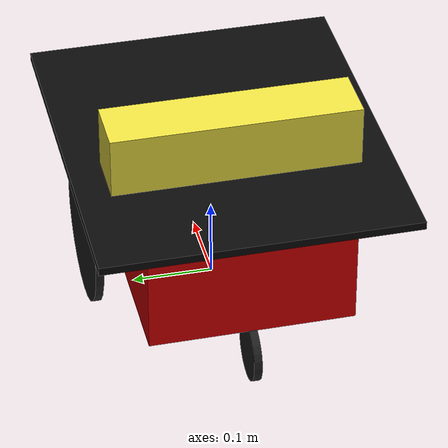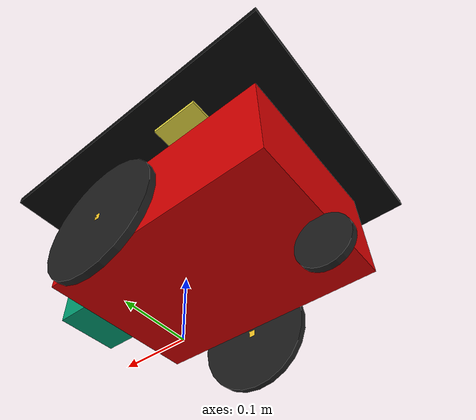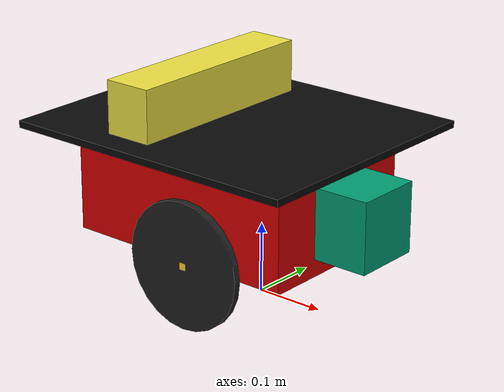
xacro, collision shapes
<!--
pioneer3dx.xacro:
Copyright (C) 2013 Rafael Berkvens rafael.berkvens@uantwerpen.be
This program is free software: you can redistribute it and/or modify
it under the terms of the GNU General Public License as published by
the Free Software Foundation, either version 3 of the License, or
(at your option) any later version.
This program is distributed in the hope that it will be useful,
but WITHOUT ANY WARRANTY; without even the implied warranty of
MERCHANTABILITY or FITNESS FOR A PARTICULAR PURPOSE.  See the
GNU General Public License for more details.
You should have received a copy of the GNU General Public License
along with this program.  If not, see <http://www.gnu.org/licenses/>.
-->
<?xml version="1.0"?>

<robot name="pioneer3dx" xmlns:xacro="http://ros.org/wiki/xacro">
    <xacro:include filename="$(find p3dx_description)/urdf/pioneer3dx.xacro" />
    <xacro:include filename="$(find p3dx_description)/urdf/kinect.xacro" />

    <xacro:property name="kinect_offset_x" value="-0.06" />
    <xacro:property name="kinect_offset_y" value="0" />
    <xacro:property name="kinect_offset_z" value="0.035" />

    <!-- Kinect -->
    <joint name="kinect_frame_joint" type="fixed">
        <origin xyz="${kinect_offset_x} ${kinect_offset_y} ${kinect_offset_z}" rpy="0 0 0" />
        <parent link="top_plate"/>
        <child link="kinect_link"/>
    </joint>
    <xacro:kinect_camera />
</robot>

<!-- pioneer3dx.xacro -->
<robot name="pioneer3dx" xmlns:xacro="http://ros.org/wiki/xacro">

  <!-- import all gazebo-customization elements, including gazebo colors -->
  <xacro:include filename="$(find p3dx_description)/urdf/pioneer3dx.gazebo" />
  <!-- import the pioneer 3dx's wheels -->
  <xacro:include filename="$(find p3dx_description)/urdf/pioneer3dx_wheel.xacro" />

  <!-- chassis -->
	<link name="base_link">
		<inertial>
			<mass value="3.5" />
			<origin xyz="-0.05 0 0" />
			<inertia ixx="1" ixy="0" ixz="0" iyy="1" iyz="0" izz="1" />
		</inertial>

		<visual name="base_visual">
			<origin xyz="-0.045 0 0.148" rpy="0 0 0" />
			<geometry name="pioneer_geom">
				<mesh filename="package://p3dx_description/meshes/chassis.dae" />
			</geometry>
			<material name="ChassisRed">
				<color rgba="0.851 0.0 0.0 1.0" />
			</material>
		</visual>

		<collision>
			<origin xyz="-0.045 0 0.145" rpy="0 0 0" />
			<geometry>
				<box size="0.35 0.25 0.14" />
			</geometry>
		</collision>
	</link>

  <!-- top_plate -->
	<link name="top_plate">
		<inertial>
			<mass value="0.01" />
			<origin xyz="0 0 0" />
			<inertia ixx="1" ixy="0" ixz="0" iyy="1" iyz="0" izz="1" />
		</inertial>

		<visual name="base_visual">
			<origin xyz="0 0 0" rpy="0 0 0" />
			<geometry name="top_geom">
				<mesh filename="package://p3dx_description/meshes/top.dae" />
			</geometry>

			<material name="TopBlack">
				<color rgba="0.038 0.038 0.038 1.0" />
			</material>
		</visual>

		<collision>
			<origin xyz="0.0 0 0" rpy="0 0 0" />
			<geometry name="pioneer_geom">
				<box size="0.45 0.38 0.01" />
			</geometry>
		</collision>
	</link>

	<joint name="base_top_joint" type="fixed">
		<origin xyz="-0.045 0 0.234" rpy="0 0 0" />
		<parent link="base_link" />
		<child link="top_plate" />
	</joint>

  <!-- swivel -->
	<link name="swivel">
		<inertial>
			<mass value="0.1" />
			<origin xyz="0 0 0" />
			<inertia ixx="0.01" ixy="0" ixz="0" iyy="0.01" iyz="0" izz="0.01" />
		</inertial>

		<visual name="base_visual">
			<origin xyz="0 0 0" rpy="0 0 0" />
			<geometry name="pioneer_geom">
				<mesh filename="package://p3dx_description/meshes/swivel.dae" />
			</geometry>
			<material name="swivel">
				<color rgba="0.5 0.5 0.5 1" />
			</material>
		</visual>

		<collision>
			<origin xyz="0 0 0" rpy="0 0 0" />
			<geometry>
				<box size="0 0 0" />
			</geometry>
		</collision>
	</link>

	<joint name="base_swivel_joint" type="continuous">
		<origin xyz="-0.185 0 0.055" rpy="0 0 0" />
		<axis xyz="0 0 1" />
		<anchor xyz="0 0 0" />
		<limit effort="100" velocity="100" k_velocity="0" />
		<joint_properties damping="0.0" friction="0.0" />
		<parent link="base_link" />
		<child link="swivel" />
	</joint>

  <!-- center_hubcap -->
	<link name="center_hubcap">
		<inertial>
			<mass value="0.01" />
			<origin xyz="0 0 0" />
			<inertia ixx="0.012411765597" ixy="-0.000711733678" ixz="0.00050272983"
				iyy="0.015218160428" iyz="-0.000004273467" izz="0.011763977943" />
		</inertial>

		<visual name="base_visual">
			<origin xyz="0 0 0" rpy="0 0 0" />
			<geometry name="pioneer_geom">
				<mesh filename="package://p3dx_description/meshes/center_hubcap.dae" />
			</geometry>
			<material name="swivel">
				<color rgba="0.5 0.5 0.5 1" />
			</material>
		</visual>

		<collision>
			<origin xyz="0 0 0" rpy="0 0 0" />
			<geometry>
				<box size="0 0 0" />
			</geometry>
		</collision>
	</link>

	<joint name="swivel_hubcap_joint" type="continuous">
		<origin xyz="-0.026 0 -0.016" rpy="0 0 0" />
		<axis xyz="0 1 0" />
		<anchor xyz="0 0 0" />
		<limit effort="100" velocity="100" k_velocity="0" />
		<joint_properties damping="0.0" friction="0.0" />
		<parent link="swivel" />
		<child link="center_wheel" />
	</joint>

  <!-- center_wheel -->
	<link name="center_wheel">
		<inertial>
			<mass value="0.1" />
			<origin xyz="0 0 0" />
			<inertia ixx="0.012411765597" ixy="-0.000711733678" ixz="0.00050272983"
				iyy="0.015218160428" iyz="-0.000004273467" izz="0.011763977943" />
		</inertial>

		<visual name="base_visual">
			<origin xyz="0 0 0" rpy="0 0 0" />
			<geometry name="pioneer_geom">
				<mesh filename="package://p3dx_description/meshes/center_wheel.dae" />
			</geometry>
			<material name="WheelBlack">
				<color rgba="0.117 0.117 0.117 1" />
			</material>
		</visual>

		<collision>
			<origin xyz="0 0 0" rpy="${-3.1415927/2.0} 0 0" />
			<geometry>
				<cylinder radius="0.0375" length="0.01" />
			</geometry>
		</collision>
	</link>

	<joint name="center_wheel_joint" type="fixed">
		<origin xyz="-0.0035 0 -0.001" rpy="0 0 0"/>
		<parent link="center_wheel"/>
		<child link="center_hubcap"/>
	</joint>

	<xacro:p3dx_wheel suffix="left" parent="base_link" reflect="1"/>
	<xacro:p3dx_wheel suffix="right" parent="base_link" reflect="-1"/>

  <!-- front_sonar -->
	<link name="front_sonar">
		<inertial>
			<mass value="0.0001" />
			<origin xyz="0 0 0" />
			<inertia ixx="1" ixy="0" ixz="0" iyy="1" iyz="0" izz="1" />
		</inertial>

		<visual name="front_sonar_vis">
			<origin rpy="0 0 0" xyz="0 0 0" />
			<geometry name="pioneer_geom">
				<mesh filename="package://p3dx_description/meshes/front_sonar.dae" />
			</geometry>
			<material name="SonarYellow">
				<color rgba="0.715 0.583 0.210 1.0" />
			</material>
		</visual>

		<collision>
			<origin rpy="0 0 0" xyz="0 0 0" />
			<geometry>
				<box size="0 0 0" />
			</geometry>
		</collision>
	</link>

	<joint name="base_front_joint" type="fixed">
		<origin rpy="0 0 0" xyz="0.109 0 0.209" />
		<parent link="base_link" />
		<child link="front_sonar" />
	</joint>

	<!-- lms100 laser -->
	<link name="lms100">
		<inertial>
			<mass value="1e-5" />
			<origin xyz="0 0 0" rpy="0 0 0" />
			<inertia ixx="1e-6" ixy="0" ixz="0" iyy="1e-6" iyz="0" izz="1e-6" />
		</inertial>

		<visual>
			<origin xyz="0 0 0" rpy="0 0 0" />
			<geometry>
				<mesh filename="package://p3dx_description/meshes/lms100.dae" />
			</geometry>
		</visual>

		<collision>
			<origin xyz="0 0 0" rpy="0 0 0" />
			<geometry>
				<box size="0.1 0.1 0.1" />
			</geometry>
		</collision>
	</link>

	<joint name="lms100_joint" type="fixed">
		<axis xyz="0 1 0" />
		<origin xyz="0.16 0 0.15" rpy="0 0 0" />
		<parent link="base_link" />
		<child link="lms100" />
	</joint>

</robot>

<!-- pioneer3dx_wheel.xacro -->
<robot xmlns:xacro="http://ros.org/wiki/xacro">

	<!-- properties (constants) -->
	<property name="M_PI" value="3.14159" />

	<!-- right/left hubcap + wheel -->
	<xacro:macro name="p3dx_wheel" params="suffix parent reflect">

		<!-- wheel -->
		<link name="p3dx_${suffix}_wheel">
			<inertial>
				<mass value="0.5" />
				<origin xyz="0 0 0" />
				<inertia ixx="0.012411765597" ixy="0" ixz="0" iyy="0.015218160428"
					iyz="0" izz="0.011763977943" />
			</inertial>

			<visual name="base_visual">
				<origin xyz="0 0 0" rpy="0 0 0" />
				<geometry name="pioneer_geom">
					<mesh filename="package://p3dx_description/meshes/${suffix}_wheel.stl" />
				</geometry>
				<material name="WheelBlack">
					<color rgba="0.117 0.117 0.117 1" />
				</material>
			</visual>

			<collision>
				<origin xyz="0 0 0" rpy="${-3.1415927/2} 0 0" />
				<geometry>
					<cylinder radius="0.09" length="0.01" />
				</geometry>
			</collision>
		</link>

		<joint name="base_${suffix}_hubcap_joint" type="fixed">
			<origin xyz="0 0 0" rpy="0 0 0" />
			<parent link="p3dx_${suffix}_wheel" />
			<child link="p3dx_${suffix}_hubcap" />
		</joint>

		<!-- hubcap -->
		<link name="p3dx_${suffix}_hubcap">
			<inertial>
				<mass value="0.01" />
				<origin xyz="0 0 0" />
				<inertia ixx="0.012411765597" ixy="0" ixz="0" iyy="0.015218160428"
					iyz="0" izz="0.011763977943" />
			</inertial>

			<visual name="base_visual">
				<origin xyz="0 0 0" rpy="0 0 0" />
				<geometry name="pioneer_geom">
					<mesh filename="package://p3dx_description/meshes/${suffix}_hubcap.stl" />
				</geometry>

				<material name="HubcapYellow">
					<color rgba="1.0 0.811 0.151 1.0" />
				</material>
			</visual>

			<collision>
				<origin xyz="0 0 0" rpy="0 0 0" />
				<geometry>
					<box size="0.01 0.01 0.01" />
				</geometry>
			</collision>
		</link>

		<joint name="base_${suffix}_wheel_joint" type="continuous">
			<axis xyz="0 1 0" />
			<anchor xyz="0 0 0" />
			<limit effort="100" velocity="100" />
			<joint_properties damping="0.0" friction="0.0" />
			<origin xyz="0 ${reflect*0.158} 0.091" rpy="0 0 0" />
			<parent link="base_link" />
			<child link="p3dx_${suffix}_wheel" />
		</joint>

		<!-- gazebo elements -->

	    <transmission name="${parent}_${suffix}_wheel_trans">
	      <type>pr2_mechanism_model/SimpleTransmission</type>
	      <joint name="base_${suffix}_wheel_joint">
	      	<hardwareInterface>VelocityJointInterface</hardwareInterface>
	  	  </joint>
	      <actuator name="base_${suffix}_wheel_motor">
	        <mechanicalReduction>${reflect * 624/35 * 80/19}</mechanicalReduction>
	      </actuator>
	    </transmission>

		<gazebo reference="p3dx_${suffix}_hubcap">
			<material>Gazebo/Yellow</material>
		</gazebo>

		<gazebo reference="p3dx_${suffix}_wheel">
			<material>Gazebo/Black</material>
			<mu1>0.5</mu1>
			<mu2>50.0</mu2>
			<kp>100000000.0</kp>
			<kd>1.0</kd>
		</gazebo>

	</xacro:macro>

</robot>

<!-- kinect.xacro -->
<robot xmlns:xacro="http://www.ros.org/wiki/xacro" name="kinect_camera">

    <xacro:macro name="kinect_camera" params="prefix:=kinect">
        <link name="${prefix}_link">
            <origin xyz="0 0 0" rpy="0 0 0"/>
            <visual>
                <origin xyz="0 0 0" rpy="0 0 ${M_PI/2}"/>
                <geometry>
                    <mesh filename="package://mrobot_description/meshes/kinect.dae" />
                </geometry>
            </visual>
            <collision>
                <geometry>
                    <box size="0.07 0.3 0.09"/>
                </geometry>
            </collision>
        </link>

        <joint name="${prefix}_optical_joint" type="fixed">
            <origin xyz="0 0 0" rpy="-1.5708 0 -1.5708"/>
            <parent link="${prefix}_link"/>
            <child link="${prefix}_frame_optical"/>
        </joint>

        <link name="${prefix}_frame_optical"/>

        <gazebo reference="${prefix}_link">
            <sensor type="depth" name="${prefix}">
                <always_on>true</always_on>
                <update_rate>50.0</update_rate>
                <camera>
                    <horizontal_fov>${120.0*M_PI/180.0}</horizontal_fov>
                    <image>
                        <format>R8G8B8</format>
                        <width>640</width>
                        <height>480</height>
                    </image>
                    <clip>
                        <near>0.01</near>
                        <far>8.0</far>
                    </clip>
                </camera>
                <plugin name="kinect_${prefix}_controller" filename="libgazebo_ros_openni_kinect.so">
                    <cameraName>${prefix}</cameraName>
                    <alwaysOn>true</alwaysOn>
                    <updateRate>50</updateRate>
                    <imageTopicName>rgb/image_raw</imageTopicName>
                    <depthImageTopicName>depth/image_raw</depthImageTopicName>
                    <pointCloudTopicName>depth/points</pointCloudTopicName>
                    <cameraInfoTopicName>rgb/camera_info</cameraInfoTopicName>
                    <depthImageCameraInfoTopicName>depth/camera_info</depthImageCameraInfoTopicName>
                    <frameName>${prefix}_frame_optical</frameName>
                    <baseline>0.1</baseline>
                    <distortion_k1>0.0</distortion_k1>
                    <distortion_k2>0.0</distortion_k2>
                    <distortion_k3>0.0</distortion_k3>
                    <distortion_t1>0.0</distortion_t1>
                    <distortion_t2>0.0</distortion_t2>
                    <pointCloudCutoff>0.4</pointCloudCutoff>
                </plugin>
            </sensor>
        </gazebo>
    </xacro:macro>
</robot>
